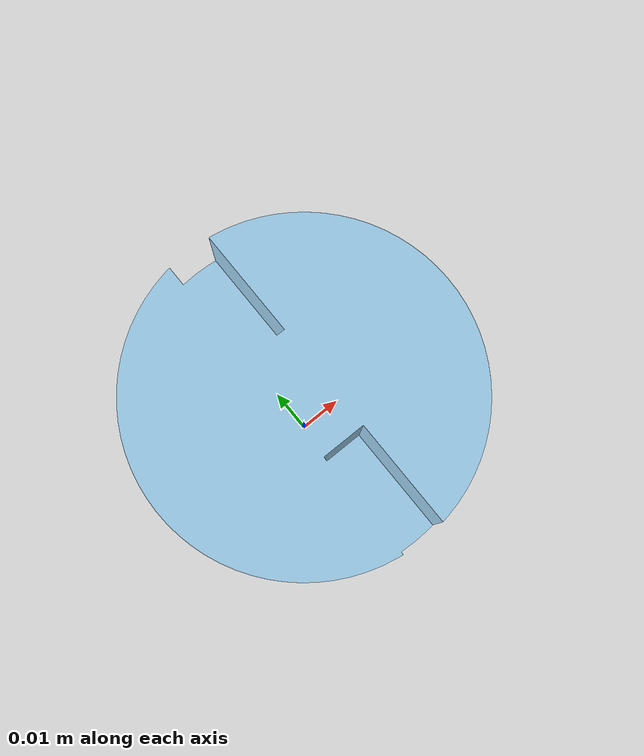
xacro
<?xml version="1.0" ?>
<!-- Generated using onshape-to-robot -->
<!-- Onshape https://cad.onshape.com/documents/4f1fd5b6397f69e2103b5b4c/w/c07ed08a3a547176b43a6a42/e/de71938432bad320e4985140 -->
<robot name="robot">
  <!-- Link part_1 -->
  <link name="part_1">
    <inertial>
      <origin xyz="0 0 0" rpy="0 0 0"/>
      <mass value="1e-09"/>
      <inertia ixx="1e-09" ixy="0" ixz="0" iyy="1e-09" iyz="0" izz="1e-09"/>
    </inertial>
    <!-- Part part_1 -->
    <visual>
      <origin xyz="0 0 0" rpy="0 -0 0"/>
      <geometry>
        <mesh filename="file://$(find sixdof)/meshes/part_1.stl"/>
      </geometry>
      <material name="part_1_material">
        <color rgba="0.615686 0.811765 0.929412 1.0"/>
      </material>
    </visual>
    <collision>
      <origin xyz="0 0 0" rpy="0 -0 0"/>
      <geometry>
        <mesh filename="file://$(find sixdof)/meshes/part_1.stl"/>
      </geometry>
    </collision>
  </link>
</robot>
